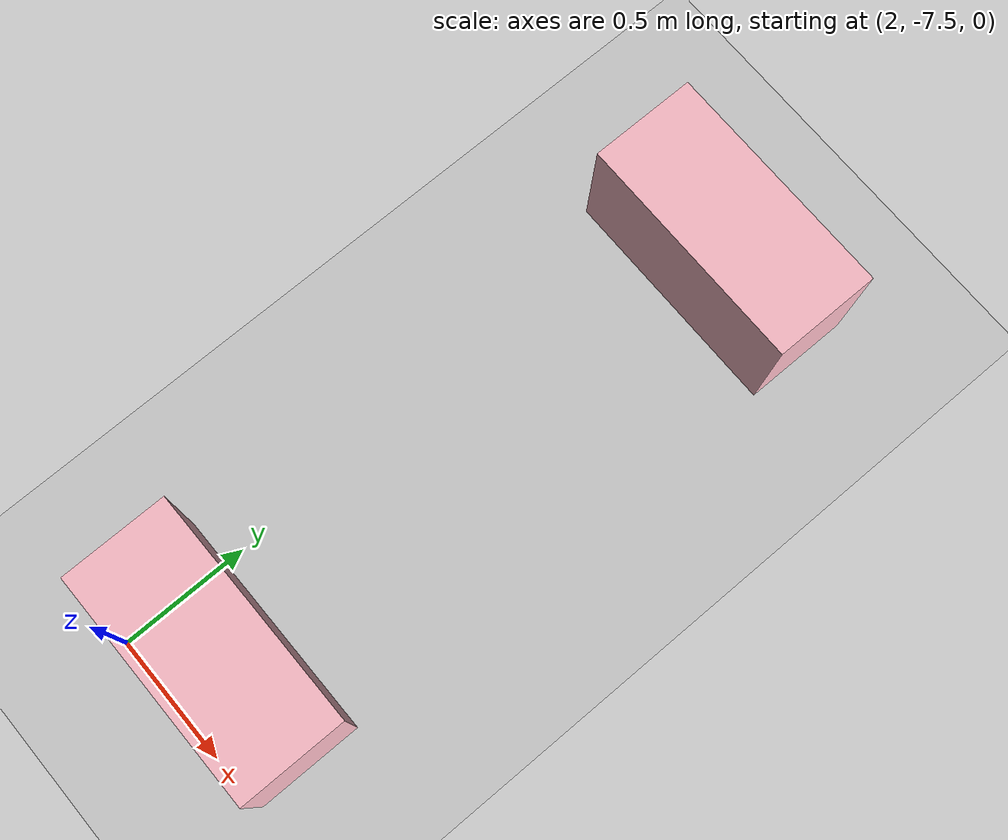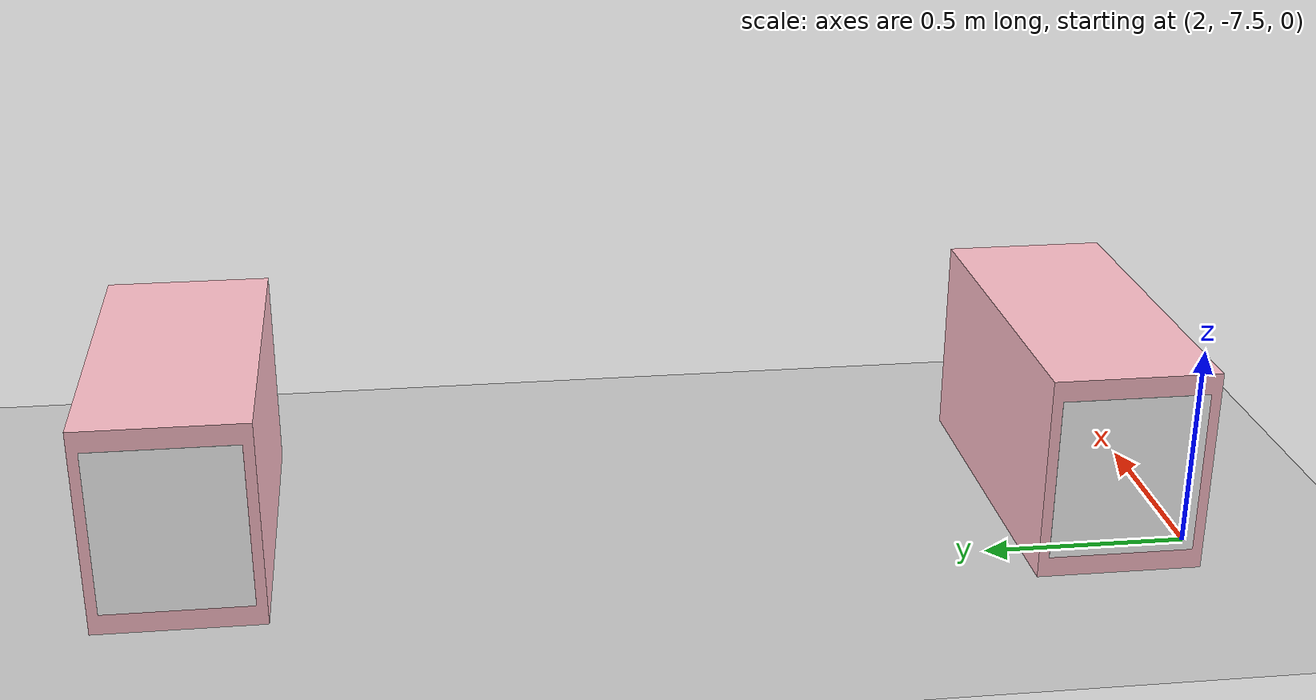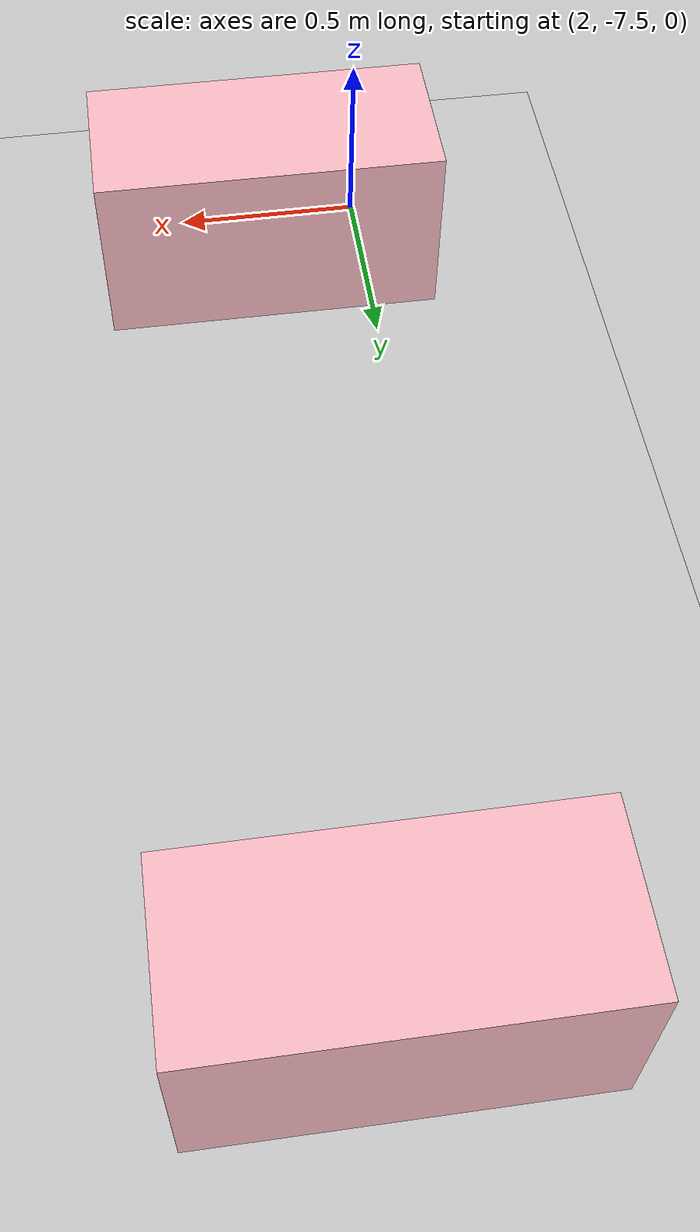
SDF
<sdf version="1.9">
 <world name="pig_pen_16units_world">
  <model name="ground_plane">
   <static>true</static>
   <link name="link">
    <collision name="collision">
     <geometry><plane><normal>0 0 1</normal><size>30 30</size></plane></geometry>
     <surface><friction><ode><mu>1.0</mu><mu2>1.0</mu2></ode></friction></surface>
    </collision>
    <visual name="visual">
     <geometry><plane><normal>0 0 1</normal><size>30 30</size></plane></geometry>
     <material>
      <ambient>0.8 0.8 0.8 1</ambient>
      <diffuse>0.8 0.8 0.8 1</diffuse>
      <specular>0.2 0.2 0.2 1</specular>
     </material>
    </visual>
   </link>
  </model>
  <include><uri>model://farm_pig</uri><name>pig9_a</name><pose>2.275 -7.275 0.27 0 0 3.1416</pose></include>
  <include><uri>model://farm_pig</uri><name>pig12_b</name><pose>2.275 -5.085 0.27 0 0 3.1416</pose></include>
 </world>
</sdf>
